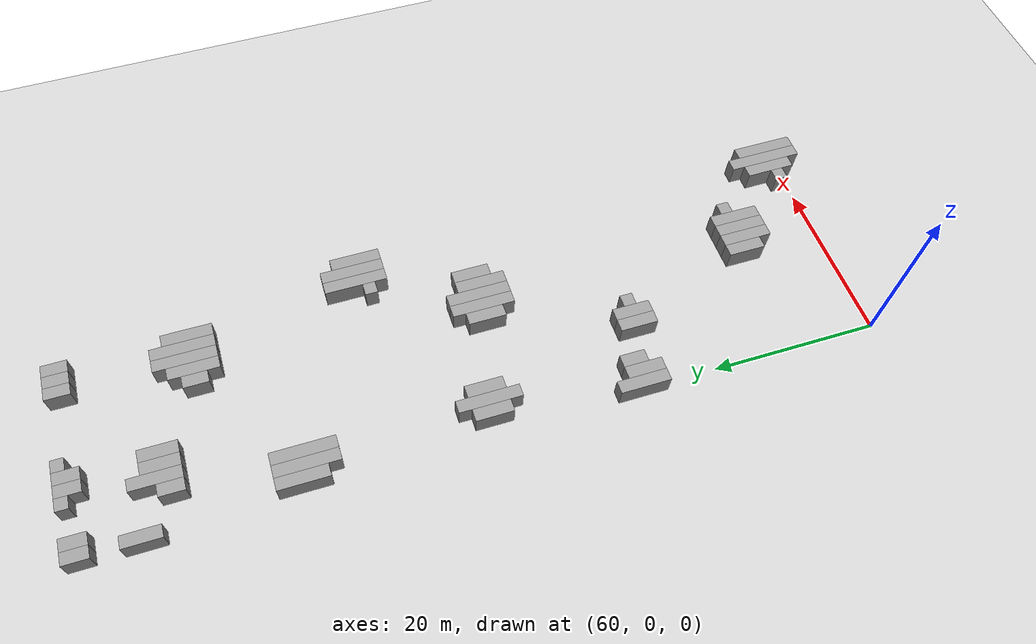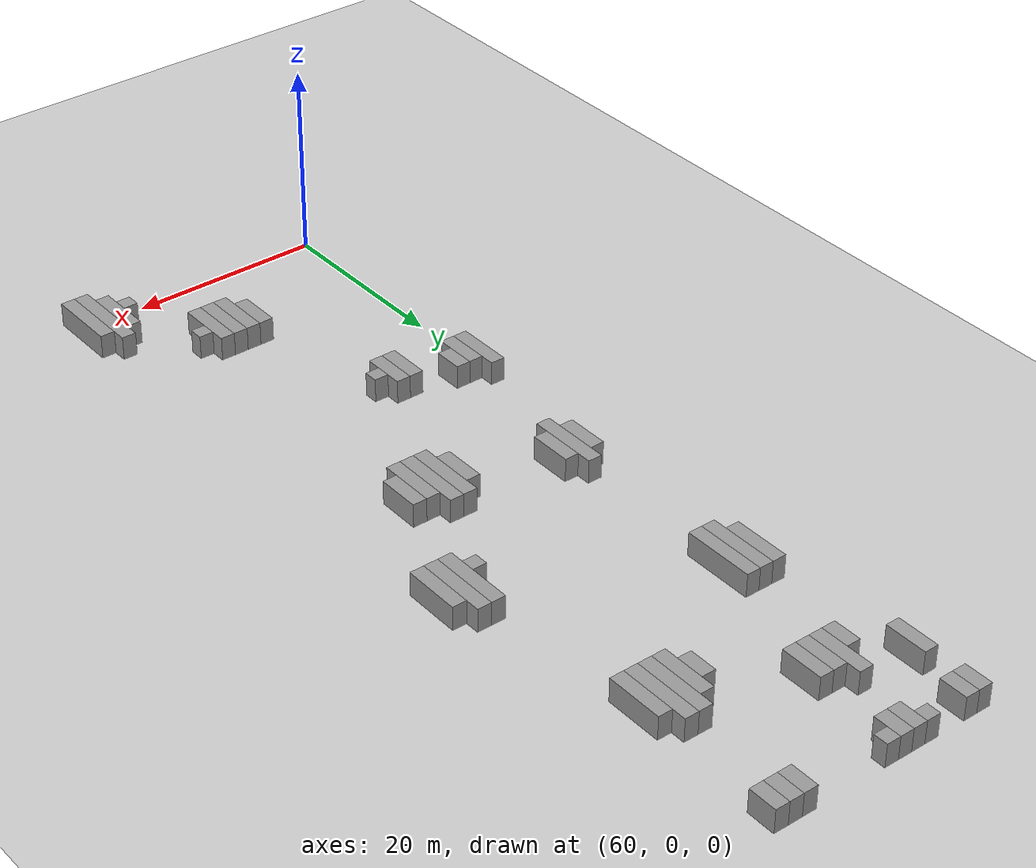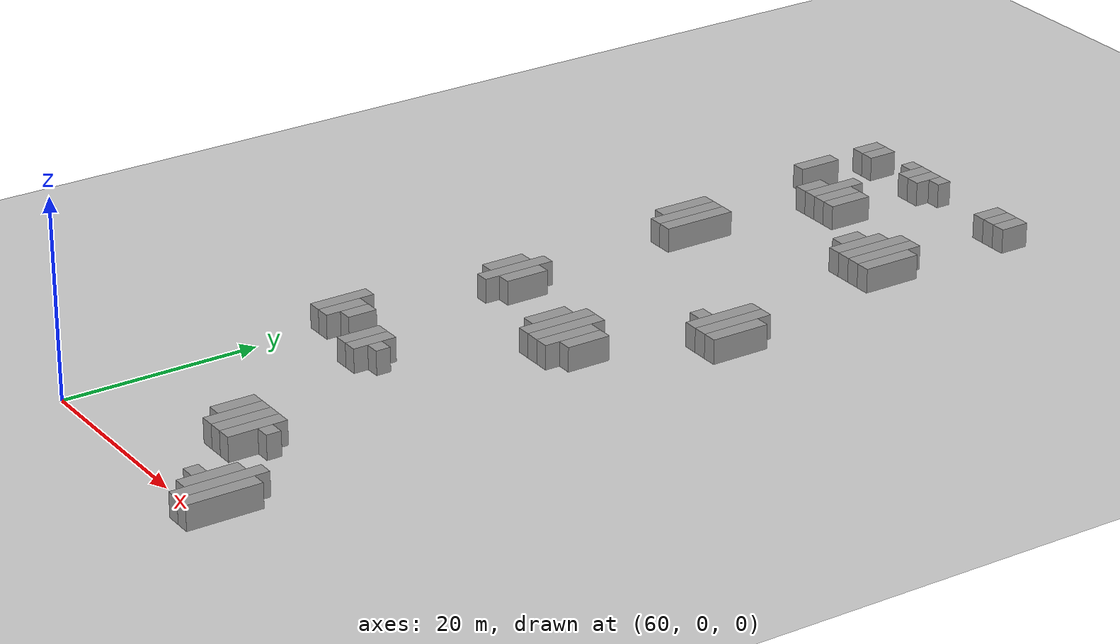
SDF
<sdf version="1.4">
 <world name="1_wall">
  <model name="ground_plane">
   <static>1</static>
   <link name="link">
    <collision name="collision">
     <geometry><plane><normal>0 0 1</normal><size>1000 1000</size></plane></geometry>
     <surface><friction><ode><mu>100</mu><mu2>50</mu2></ode></friction></surface>
    </collision>
    <visual name="visual">
     <cast_shadows>0</cast_shadows>
     <geometry><plane><normal>0 0 1</normal><size>10000 10000</size></plane></geometry>
     <material>
      <script><uri>file://media/materials/scripts/gazebo.material</uri><name>Gazebo/Grey</name></script>
     </material>
    </visual>
    <velocity_decay><linear>0</linear><angular>0</angular></velocity_decay>
   </link>
  </model>
  <model name="Wall_99">
   <static>1</static>
   <link name="Wall_99">
    <collision name="Wall_Collision_99">
     <geometry><box><size>4.5 1.5 2.5</size></box></geometry>
     <pose>0 0 1.25 0 -0 0</pose>
    </collision>
    <visual name="Wall_Visual_99">
     <pose>0 0 1.25 0 -0 0</pose>
     <geometry><box><size>4.5 1.5 2.5</size></box></geometry>
     <material>
      <script><uri>file://media/materials/scripts/gazebo.material</uri><name>Gazebo/Grey</name></script>
     </material>
    </visual>
    <velocity_decay><linear>0</linear><angular>0</angular></velocity_decay>
    <pose>58.5 85.5 0 0 0 1.5707963267948966</pose>
   </link>
  </model>
  <model name="Wall_100">
   <static>1</static>
   <link name="Wall_100">
    <collision name="Wall_Collision_100">
     <geometry><box><size>3.0 1.5 2.5</size></box></geometry>
     <pose>0 0 1.25 0 -0 0</pose>
    </collision>
    <visual name="Wall_Visual_100">
     <pose>0 0 1.25 0 -0 0</pose>
     <geometry><box><size>3.0 1.5 2.5</size></box></geometry>
     <material>
      <script><uri>file://media/materials/scripts/gazebo.material</uri><name>Gazebo/Grey</name></script>
     </material>
    </visual>
    <velocity_decay><linear>0</linear><angular>0</angular></velocity_decay>
    <pose>58.5 92.25 0 0 0 1.5707963267948966</pose>
   </link>
  </model>
  <model name="Wall_101">
   <static>1</static>
   <link name="Wall_101">
    <collision name="Wall_Collision_101">
     <geometry><box><size>6.0 1.5 2.5</size></box></geometry>
     <pose>0 0 1.25 0 -0 0</pose>
    </collision>
    <visual name="Wall_Visual_101">
     <pose>0 0 1.25 0 -0 0</pose>
     <geometry><box><size>6.0 1.5 2.5</size></box></geometry>
     <material>
      <script><uri>file://media/materials/scripts/gazebo.material</uri><name>Gazebo/Grey</name></script>
     </material>
    </visual>
    <velocity_decay><linear>0</linear><angular>0</angular></velocity_decay>
    <pose>60.0 29.25 0 0 0 1.5707963267948966</pose>
   </link>
  </model>
  <model name="Wall_102">
   <static>1</static>
   <link name="Wall_102">
    <collision name="Wall_Collision_102">
     <geometry><box><size>6.0 1.5 2.5</size></box></geometry>
     <pose>0 0 1.25 0 -0 0</pose>
    </collision>
    <visual name="Wall_Visual_102">
     <pose>0 0 1.25 0 -0 0</pose>
     <geometry><box><size>6.0 1.5 2.5</size></box></geometry>
     <material>
      <script><uri>file://media/materials/scripts/gazebo.material</uri><name>Gazebo/Grey</name></script>
     </material>
    </visual>
    <velocity_decay><linear>0</linear><angular>0</angular></velocity_decay>
    <pose>60.0 68.25 0 0 0 1.5707963267948966</pose>
   </link>
  </model>
  <model name="Wall_103">
   <static>1</static>
   <link name="Wall_103">
    <collision name="Wall_Collision_103">
     <geometry><box><size>3.0 1.5 2.5</size></box></geometry>
     <pose>0 0 1.25 0 -0 0</pose>
    </collision>
    <visual name="Wall_Visual_103">
     <pose>0 0 1.25 0 -0 0</pose>
     <geometry><box><size>3.0 1.5 2.5</size></box></geometry>
     <material>
      <script><uri>file://media/materials/scripts/gazebo.material</uri><name>Gazebo/Grey</name></script>
     </material>
    </visual>
    <velocity_decay><linear>0</linear><angular>0</angular></velocity_decay>
    <pose>60.0 92.25 0 0 0 1.5707963267948966</pose>
   </link>
  </model>
  <model name="Wall_104">
   <static>1</static>
   <link name="Wall_104">
    <collision name="Wall_Collision_104">
     <geometry><box><size>4.5 1.5 2.5</size></box></geometry>
     <pose>0 0 1.25 0 -0 0</pose>
    </collision>
    <visual name="Wall_Visual_104">
     <pose>0 0 1.25 0 -0 0</pose>
     <geometry><box><size>4.5 1.5 2.5</size></box></geometry>
     <material>
      <script><uri>file://media/materials/scripts/gazebo.material</uri><name>Gazebo/Grey</name></script>
     </material>
    </visual>
    <velocity_decay><linear>0</linear><angular>0</angular></velocity_decay>
    <pose>61.5 28.5 0 0 0 1.5707963267948966</pose>
   </link>
  </model>
  <model name="Wall_105">
   <static>1</static>
   <link name="Wall_105">
    <collision name="Wall_Collision_105">
     <geometry><box><size>4.5 1.5 2.5</size></box></geometry>
     <pose>0 0 1.25 0 -0 0</pose>
    </collision>
    <visual name="Wall_Visual_105">
     <pose>0 0 1.25 0 -0 0</pose>
     <geometry><box><size>4.5 1.5 2.5</size></box></geometry>
     <material>
      <script><uri>file://media/materials/scripts/gazebo.material</uri><name>Gazebo/Grey</name></script>
     </material>
    </visual>
    <velocity_decay><linear>0</linear><angular>0</angular></velocity_decay>
    <pose>61.5 46.5 0 0 0 1.5707963267948966</pose>
   </link>
  </model>
  <model name="Wall_106">
   <static>1</static>
   <link name="Wall_106">
    <collision name="Wall_Collision_106">
     <geometry><box><size>7.5 1.5 2.5</size></box></geometry>
     <pose>0 0 1.25 0 -0 0</pose>
    </collision>
    <visual name="Wall_Visual_106">
     <pose>0 0 1.25 0 -0 0</pose>
     <geometry><box><size>7.5 1.5 2.5</size></box></geometry>
     <material>
      <script><uri>file://media/materials/scripts/gazebo.material</uri><name>Gazebo/Grey</name></script>
     </material>
    </visual>
    <velocity_decay><linear>0</linear><angular>0</angular></velocity_decay>
    <pose>61.5 67.5 0 0 0 1.5707963267948966</pose>
   </link>
  </model>
  <model name="Wall_107">
   <static>1</static>
   <link name="Wall_107">
    <collision name="Wall_Collision_107">
     <geometry><box><size>3.0 1.5 2.5</size></box></geometry>
     <pose>0 0 1.25 0 -0 0</pose>
    </collision>
    <visual name="Wall_Visual_107">
     <pose>0 0 1.25 0 -0 0</pose>
     <geometry><box><size>3.0 1.5 2.5</size></box></geometry>
     <material>
      <script><uri>file://media/materials/scripts/gazebo.material</uri><name>Gazebo/Grey</name></script>
     </material>
    </visual>
    <velocity_decay><linear>0</linear><angular>0</angular></velocity_decay>
    <pose>63.0 29.25 0 0 0 1.5707963267948966</pose>
   </link>
  </model>
  <model name="Wall_108">
   <static>1</static>
   <link name="Wall_108">
    <collision name="Wall_Collision_108">
     <geometry><box><size>7.5 1.5 2.5</size></box></geometry>
     <pose>0 0 1.25 0 -0 0</pose>
    </collision>
    <visual name="Wall_Visual_108">
     <pose>0 0 1.25 0 -0 0</pose>
     <geometry><box><size>7.5 1.5 2.5</size></box></geometry>
     <material>
      <script><uri>file://media/materials/scripts/gazebo.material</uri><name>Gazebo/Grey</name></script>
     </material>
    </visual>
    <velocity_decay><linear>0</linear><angular>0</angular></velocity_decay>
    <pose>63.0 46.5 0 0 0 1.5707963267948966</pose>
   </link>
  </model>
  <model name="Wall_109">
   <static>1</static>
   <link name="Wall_109">
    <collision name="Wall_Collision_109">
     <geometry><box><size>7.5 1.5 2.5</size></box></geometry>
     <pose>0 0 1.25 0 -0 0</pose>
    </collision>
    <visual name="Wall_Visual_109">
     <pose>0 0 1.25 0 -0 0</pose>
     <geometry><box><size>7.5 1.5 2.5</size></box></geometry>
     <material>
      <script><uri>file://media/materials/scripts/gazebo.material</uri><name>Gazebo/Grey</name></script>
     </material>
    </visual>
    <velocity_decay><linear>0</linear><angular>0</angular></velocity_decay>
    <pose>63.0 67.5 0 0 0 1.5707963267948966</pose>
   </link>
  </model>
  <model name="Wall_110">
   <static>1</static>
   <link name="Wall_110">
    <collision name="Wall_Collision_110">
     <geometry><box><size>3.0 1.5 2.5</size></box></geometry>
     <pose>0 0 1.25 0 -0 0</pose>
    </collision>
    <visual name="Wall_Visual_110">
     <pose>0 0 1.25 0 -0 0</pose>
     <geometry><box><size>3.0 1.5 2.5</size></box></geometry>
     <material>
      <script><uri>file://media/materials/scripts/gazebo.material</uri><name>Gazebo/Grey</name></script>
     </material>
    </visual>
    <velocity_decay><linear>0</linear><angular>0</angular></velocity_decay>
    <pose>63.0 81.75 0 0 0 1.5707963267948966</pose>
   </link>
  </model>
  <model name="Wall_111">
   <static>1</static>
   <link name="Wall_111">
    <collision name="Wall_Collision_111">
     <geometry><box><size>4.5 1.5 2.5</size></box></geometry>
     <pose>0 0 1.25 0 -0 0</pose>
    </collision>
    <visual name="Wall_Visual_111">
     <pose>0 0 1.25 0 -0 0</pose>
     <geometry><box><size>4.5 1.5 2.5</size></box></geometry>
     <material>
      <script><uri>file://media/materials/scripts/gazebo.material</uri><name>Gazebo/Grey</name></script>
     </material>
    </visual>
    <velocity_decay><linear>0</linear><angular>0</angular></velocity_decay>
    <pose>64.5 46.5 0 0 0 1.5707963267948966</pose>
   </link>
  </model>
  <model name="Wall_112">
   <static>1</static>
   <link name="Wall_112">
    <collision name="Wall_Collision_112">
     <geometry><box><size>6.0 1.5 2.5</size></box></geometry>
     <pose>0 0 1.25 0 -0 0</pose>
    </collision>
    <visual name="Wall_Visual_112">
     <pose>0 0 1.25 0 -0 0</pose>
     <geometry><box><size>6.0 1.5 2.5</size></box></geometry>
     <material>
      <script><uri>file://media/materials/scripts/gazebo.material</uri><name>Gazebo/Grey</name></script>
     </material>
    </visual>
    <velocity_decay><linear>0</linear><angular>0</angular></velocity_decay>
    <pose>64.5 83.25 0 0 0 1.5707963267948966</pose>
   </link>
  </model>
  <model name="Wall_113">
   <static>1</static>
   <link name="Wall_113">
    <collision name="Wall_Collision_113">
     <geometry><box><size>1.5 1.5 2.5</size></box></geometry>
     <pose>0 0 1.25 0 -0 0</pose>
    </collision>
    <visual name="Wall_Visual_113">
     <pose>0 0 1.25 0 -0 0</pose>
     <geometry><box><size>1.5 1.5 2.5</size></box></geometry>
     <material>
      <script><uri>file://media/materials/scripts/gazebo.material</uri><name>Gazebo/Grey</name></script>
     </material>
    </visual>
    <velocity_decay><linear>0</linear><angular>0</angular></velocity_decay>
    <pose>64.5 93.0 0 0 0 1.5707963267948966</pose>
   </link>
  </model>
  <model name="Wall_114">
   <static>1</static>
   <link name="Wall_114">
    <collision name="Wall_Collision_114">
     <geometry><box><size>4.5 1.5 2.5</size></box></geometry>
     <pose>0 0 1.25 0 -0 0</pose>
    </collision>
    <visual name="Wall_Visual_114">
     <pose>0 0 1.25 0 -0 0</pose>
     <geometry><box><size>4.5 1.5 2.5</size></box></geometry>
     <material>
      <script><uri>file://media/materials/scripts/gazebo.material</uri><name>Gazebo/Grey</name></script>
     </material>
    </visual>
    <velocity_decay><linear>0</linear><angular>0</angular></velocity_decay>
    <pose>66.0 82.5 0 0 0 1.5707963267948966</pose>
   </link>
  </model>
  <model name="Wall_115">
   <static>1</static>
   <link name="Wall_115">
    <collision name="Wall_Collision_115">
     <geometry><box><size>3.0 1.5 2.5</size></box></geometry>
     <pose>0 0 1.25 0 -0 0</pose>
    </collision>
    <visual name="Wall_Visual_115">
     <pose>0 0 1.25 0 -0 0</pose>
     <geometry><box><size>3.0 1.5 2.5</size></box></geometry>
     <material>
      <script><uri>file://media/materials/scripts/gazebo.material</uri><name>Gazebo/Grey</name></script>
     </material>
    </visual>
    <velocity_decay><linear>0</linear><angular>0</angular></velocity_decay>
    <pose>66.0 92.25 0 0 0 1.5707963267948966</pose>
   </link>
  </model>
  <model name="Wall_116">
   <static>1</static>
   <link name="Wall_116">
    <collision name="Wall_Collision_116">
     <geometry><box><size>4.5 1.5 2.5</size></box></geometry>
     <pose>0 0 1.25 0 -0 0</pose>
    </collision>
    <visual name="Wall_Visual_116">
     <pose>0 0 1.25 0 -0 0</pose>
     <geometry><box><size>4.5 1.5 2.5</size></box></geometry>
     <material>
      <script><uri>file://media/materials/scripts/gazebo.material</uri><name>Gazebo/Grey</name></script>
     </material>
    </visual>
    <velocity_decay><linear>0</linear><angular>0</angular></velocity_decay>
    <pose>67.5 27.0 0 0 0 1.5707963267948966</pose>
   </link>
  </model>
  <model name="Wall_117">
   <static>1</static>
   <link name="Wall_117">
    <collision name="Wall_Collision_117">
     <geometry><box><size>4.5 1.5 2.5</size></box></geometry>
     <pose>0 0 1.25 0 -0 0</pose>
    </collision>
    <visual name="Wall_Visual_117">
     <pose>0 0 1.25 0 -0 0</pose>
     <geometry><box><size>4.5 1.5 2.5</size></box></geometry>
     <material>
      <script><uri>file://media/materials/scripts/gazebo.material</uri><name>Gazebo/Grey</name></script>
     </material>
    </visual>
    <velocity_decay><linear>0</linear><angular>0</angular></velocity_decay>
    <pose>67.5 82.5 0 0 0 1.5707963267948966</pose>
   </link>
  </model>
  <model name="Wall_118">
   <static>1</static>
   <link name="Wall_118">
    <collision name="Wall_Collision_118">
     <geometry><box><size>3.0 1.5 2.5</size></box></geometry>
     <pose>0 0 1.25 0 -0 0</pose>
    </collision>
    <visual name="Wall_Visual_118">
     <pose>0 0 1.25 0 -0 0</pose>
     <geometry><box><size>3.0 1.5 2.5</size></box></geometry>
     <material>
      <script><uri>file://media/materials/scripts/gazebo.material</uri><name>Gazebo/Grey</name></script>
     </material>
    </visual>
    <velocity_decay><linear>0</linear><angular>0</angular></velocity_decay>
    <pose>67.5 92.25 0 0 0 1.5707963267948966</pose>
   </link>
  </model>
  <model name="Wall_119">
   <static>1</static>
   <link name="Wall_119">
    <collision name="Wall_Collision_119">
     <geometry><box><size>4.5 1.5 2.5</size></box></geometry>
     <pose>0 0 1.25 0 -0 0</pose>
    </collision>
    <visual name="Wall_Visual_119">
     <pose>0 0 1.25 0 -0 0</pose>
     <geometry><box><size>4.5 1.5 2.5</size></box></geometry>
     <material>
      <script><uri>file://media/materials/scripts/gazebo.material</uri><name>Gazebo/Grey</name></script>
     </material>
    </visual>
    <velocity_decay><linear>0</linear><angular>0</angular></velocity_decay>
    <pose>69.0 27.0 0 0 0 1.5707963267948966</pose>
   </link>
  </model>
  <model name="Wall_120">
   <static>1</static>
   <link name="Wall_120">
    <collision name="Wall_Collision_120">
     <geometry><box><size>1.5 1.5 2.5</size></box></geometry>
     <pose>0 0 1.25 0 -0 0</pose>
    </collision>
    <visual name="Wall_Visual_120">
     <pose>0 0 1.25 0 -0 0</pose>
     <geometry><box><size>1.5 1.5 2.5</size></box></geometry>
     <material>
      <script><uri>file://media/materials/scripts/gazebo.material</uri><name>Gazebo/Grey</name></script>
     </material>
    </visual>
    <velocity_decay><linear>0</linear><angular>0</angular></velocity_decay>
    <pose>69.0 93.0 0 0 0 1.5707963267948966</pose>
   </link>
  </model>
  <model name="Wall_121">
   <static>1</static>
   <link name="Wall_121">
    <collision name="Wall_Collision_121">
     <geometry><box><size>1.5 1.5 2.5</size></box></geometry>
     <pose>0 0 1.25 0 -0 0</pose>
    </collision>
    <visual name="Wall_Visual_121">
     <pose>0 0 1.25 0 -0 0</pose>
     <geometry><box><size>1.5 1.5 2.5</size></box></geometry>
     <material>
      <script><uri>file://media/materials/scripts/gazebo.material</uri><name>Gazebo/Grey</name></script>
     </material>
    </visual>
    <velocity_decay><linear>0</linear><angular>0</angular></velocity_decay>
    <pose>70.5 27.0 0 0 0 1.5707963267948966</pose>
   </link>
  </model>
  <model name="Wall_122">
   <static>1</static>
   <link name="Wall_122">
    <collision name="Wall_Collision_122">
     <geometry><box><size>4.5 1.5 2.5</size></box></geometry>
     <pose>0 0 1.25 0 -0 0</pose>
    </collision>
    <visual name="Wall_Visual_122">
     <pose>0 0 1.25 0 -0 0</pose>
     <geometry><box><size>4.5 1.5 2.5</size></box></geometry>
     <material>
      <script><uri>file://media/materials/scripts/gazebo.material</uri><name>Gazebo/Grey</name></script>
     </material>
    </visual>
    <velocity_decay><linear>0</linear><angular>0</angular></velocity_decay>
    <pose>73.5 10.5 0 0 0 1.5707963267948966</pose>
   </link>
  </model>
  <model name="Wall_123">
   <static>1</static>
   <link name="Wall_123">
    <collision name="Wall_Collision_123">
     <geometry><box><size>4.5 1.5 2.5</size></box></geometry>
     <pose>0 0 1.25 0 -0 0</pose>
    </collision>
    <visual name="Wall_Visual_123">
     <pose>0 0 1.25 0 -0 0</pose>
     <geometry><box><size>4.5 1.5 2.5</size></box></geometry>
     <material>
      <script><uri>file://media/materials/scripts/gazebo.material</uri><name>Gazebo/Grey</name></script>
     </material>
    </visual>
    <velocity_decay><linear>0</linear><angular>0</angular></velocity_decay>
    <pose>73.5 43.5 0 0 0 1.5707963267948966</pose>
   </link>
  </model>
  <model name="Wall_124">
   <static>1</static>
   <link name="Wall_124">
    <collision name="Wall_Collision_124">
     <geometry><box><size>6.0 1.5 2.5</size></box></geometry>
     <pose>0 0 1.25 0 -0 0</pose>
    </collision>
    <visual name="Wall_Visual_124">
     <pose>0 0 1.25 0 -0 0</pose>
     <geometry><box><size>6.0 1.5 2.5</size></box></geometry>
     <material>
      <script><uri>file://media/materials/scripts/gazebo.material</uri><name>Gazebo/Grey</name></script>
     </material>
    </visual>
    <velocity_decay><linear>0</linear><angular>0</angular></velocity_decay>
    <pose>75.0 9.75 0 0 0 1.5707963267948966</pose>
   </link>
  </model>
  <model name="Wall_125">
   <static>1</static>
   <link name="Wall_125">
    <collision name="Wall_Collision_125">
     <geometry><box><size>7.5 1.5 2.5</size></box></geometry>
     <pose>0 0 1.25 0 -0 0</pose>
    </collision>
    <visual name="Wall_Visual_125">
     <pose>0 0 1.25 0 -0 0</pose>
     <geometry><box><size>7.5 1.5 2.5</size></box></geometry>
     <material>
      <script><uri>file://media/materials/scripts/gazebo.material</uri><name>Gazebo/Grey</name></script>
     </material>
    </visual>
    <velocity_decay><linear>0</linear><angular>0</angular></velocity_decay>
    <pose>75.0 43.5 0 0 0 1.5707963267948966</pose>
   </link>
  </model>
  <model name="Wall_126">
   <static>1</static>
   <link name="Wall_126">
    <collision name="Wall_Collision_126">
     <geometry><box><size>3.0 1.5 2.5</size></box></geometry>
     <pose>0 0 1.25 0 -0 0</pose>
    </collision>
    <visual name="Wall_Visual_126">
     <pose>0 0 1.25 0 -0 0</pose>
     <geometry><box><size>3.0 1.5 2.5</size></box></geometry>
     <material>
      <script><uri>file://media/materials/scripts/gazebo.material</uri><name>Gazebo/Grey</name></script>
     </material>
    </visual>
    <velocity_decay><linear>0</linear><angular>0</angular></velocity_decay>
    <pose>75.0 77.25 0 0 0 1.5707963267948966</pose>
   </link>
  </model>
  <model name="Wall_127">
   <static>1</static>
   <link name="Wall_127">
    <collision name="Wall_Collision_127">
     <geometry><box><size>6.0 1.5 2.5</size></box></geometry>
     <pose>0 0 1.25 0 -0 0</pose>
    </collision>
    <visual name="Wall_Visual_127">
     <pose>0 0 1.25 0 -0 0</pose>
     <geometry><box><size>6.0 1.5 2.5</size></box></geometry>
     <material>
      <script><uri>file://media/materials/scripts/gazebo.material</uri><name>Gazebo/Grey</name></script>
     </material>
    </visual>
    <velocity_decay><linear>0</linear><angular>0</angular></velocity_decay>
    <pose>76.5 9.75 0 0 0 1.5707963267948966</pose>
   </link>
  </model>
  <model name="Wall_128">
   <static>1</static>
   <link name="Wall_128">
    <collision name="Wall_Collision_128">
     <geometry><box><size>7.5 1.5 2.5</size></box></geometry>
     <pose>0 0 1.25 0 -0 0</pose>
    </collision>
    <visual name="Wall_Visual_128">
     <pose>0 0 1.25 0 -0 0</pose>
     <geometry><box><size>7.5 1.5 2.5</size></box></geometry>
     <material>
      <script><uri>file://media/materials/scripts/gazebo.material</uri><name>Gazebo/Grey</name></script>
     </material>
    </visual>
    <velocity_decay><linear>0</linear><angular>0</angular></velocity_decay>
    <pose>76.5 43.5 0 0 0 1.5707963267948966</pose>
   </link>
  </model>
  <model name="Wall_129">
   <static>1</static>
   <link name="Wall_129">
    <collision name="Wall_Collision_129">
     <geometry><box><size>6.0 1.5 2.5</size></box></geometry>
     <pose>0 0 1.25 0 -0 0</pose>
    </collision>
    <visual name="Wall_Visual_129">
     <pose>0 0 1.25 0 -0 0</pose>
     <geometry><box><size>6.0 1.5 2.5</size></box></geometry>
     <material>
      <script><uri>file://media/materials/scripts/gazebo.material</uri><name>Gazebo/Grey</name></script>
     </material>
    </visual>
    <velocity_decay><linear>0</linear><angular>0</angular></velocity_decay>
    <pose>76.5 77.25 0 0 0 1.5707963267948966</pose>
   </link>
  </model>
  <model name="Wall_130">
   <static>1</static>
   <link name="Wall_130">
    <collision name="Wall_Collision_130">
     <geometry><box><size>6.0 1.5 2.5</size></box></geometry>
     <pose>0 0 1.25 0 -0 0</pose>
    </collision>
    <visual name="Wall_Visual_130">
     <pose>0 0 1.25 0 -0 0</pose>
     <geometry><box><size>6.0 1.5 2.5</size></box></geometry>
     <material>
      <script><uri>file://media/materials/scripts/gazebo.material</uri><name>Gazebo/Grey</name></script>
     </material>
    </visual>
    <velocity_decay><linear>0</linear><angular>0</angular></velocity_decay>
    <pose>78.0 9.75 0 0 0 1.5707963267948966</pose>
   </link>
  </model>
  <model name="Wall_131">
   <static>1</static>
   <link name="Wall_131">
    <collision name="Wall_Collision_131">
     <geometry><box><size>6.0 1.5 2.5</size></box></geometry>
     <pose>0 0 1.25 0 -0 0</pose>
    </collision>
    <visual name="Wall_Visual_131">
     <pose>0 0 1.25 0 -0 0</pose>
     <geometry><box><size>6.0 1.5 2.5</size></box></geometry>
     <material>
      <script><uri>file://media/materials/scripts/gazebo.material</uri><name>Gazebo/Grey</name></script>
     </material>
    </visual>
    <velocity_decay><linear>0</linear><angular>0</angular></velocity_decay>
    <pose>78.0 42.75 0 0 0 1.5707963267948966</pose>
   </link>
  </model>
  <model name="Wall_132">
   <static>1</static>
   <link name="Wall_132">
    <collision name="Wall_Collision_132">
     <geometry><box><size>7.5 1.5 2.5</size></box></geometry>
     <pose>0 0 1.25 0 -0 0</pose>
    </collision>
    <visual name="Wall_Visual_132">
     <pose>0 0 1.25 0 -0 0</pose>
     <geometry><box><size>7.5 1.5 2.5</size></box></geometry>
     <material>
      <script><uri>file://media/materials/scripts/gazebo.material</uri><name>Gazebo/Grey</name></script>
     </material>
    </visual>
    <velocity_decay><linear>0</linear><angular>0</angular></velocity_decay>
    <pose>78.0 78.0 0 0 0 1.5707963267948966</pose>
   </link>
  </model>
  <model name="Wall_133">
   <static>1</static>
   <link name="Wall_133">
    <collision name="Wall_Collision_133">
     <geometry><box><size>3.0 1.5 2.5</size></box></geometry>
     <pose>0 0 1.25 0 -0 0</pose>
    </collision>
    <visual name="Wall_Visual_133">
     <pose>0 0 1.25 0 -0 0</pose>
     <geometry><box><size>3.0 1.5 2.5</size></box></geometry>
     <material>
      <script><uri>file://media/materials/scripts/gazebo.material</uri><name>Gazebo/Grey</name></script>
     </material>
    </visual>
    <velocity_decay><linear>0</linear><angular>0</angular></velocity_decay>
    <pose>78.0 92.25 0 0 0 1.5707963267948966</pose>
   </link>
  </model>
  <model name="Wall_134">
   <static>1</static>
   <link name="Wall_134">
    <collision name="Wall_Collision_134">
     <geometry><box><size>1.5 1.5 2.5</size></box></geometry>
     <pose>0 0 1.25 0 -0 0</pose>
    </collision>
    <visual name="Wall_Visual_134">
     <pose>0 0 1.25 0 -0 0</pose>
     <geometry><box><size>1.5 1.5 2.5</size></box></geometry>
     <material>
      <script><uri>file://media/materials/scripts/gazebo.material</uri><name>Gazebo/Grey</name></script>
     </material>
    </visual>
    <velocity_decay><linear>0</linear><angular>0</angular></velocity_decay>
    <pose>79.5 10.5 0 0 0 1.5707963267948966</pose>
   </link>
  </model>
  <model name="Wall_135">
   <static>1</static>
   <link name="Wall_135">
    <collision name="Wall_Collision_135">
     <geometry><box><size>4.5 1.5 2.5</size></box></geometry>
     <pose>0 0 1.25 0 -0 0</pose>
    </collision>
    <visual name="Wall_Visual_135">
     <pose>0 0 1.25 0 -0 0</pose>
     <geometry><box><size>4.5 1.5 2.5</size></box></geometry>
     <material>
      <script><uri>file://media/materials/scripts/gazebo.material</uri><name>Gazebo/Grey</name></script>
     </material>
    </visual>
    <velocity_decay><linear>0</linear><angular>0</angular></velocity_decay>
    <pose>79.5 43.5 0 0 0 1.5707963267948966</pose>
   </link>
  </model>
  <model name="Wall_136">
   <static>1</static>
   <link name="Wall_136">
    <collision name="Wall_Collision_136">
     <geometry><box><size>7.5 1.5 2.5</size></box></geometry>
     <pose>0 0 1.25 0 -0 0</pose>
    </collision>
    <visual name="Wall_Visual_136">
     <pose>0 0 1.25 0 -0 0</pose>
     <geometry><box><size>7.5 1.5 2.5</size></box></geometry>
     <material>
      <script><uri>file://media/materials/scripts/gazebo.material</uri><name>Gazebo/Grey</name></script>
     </material>
    </visual>
    <velocity_decay><linear>0</linear><angular>0</angular></velocity_decay>
    <pose>79.5 78.0 0 0 0 1.5707963267948966</pose>
   </link>
  </model>
  <model name="Wall_137">
   <static>1</static>
   <link name="Wall_137">
    <collision name="Wall_Collision_137">
     <geometry><box><size>3.0 1.5 2.5</size></box></geometry>
     <pose>0 0 1.25 0 -0 0</pose>
    </collision>
    <visual name="Wall_Visual_137">
     <pose>0 0 1.25 0 -0 0</pose>
     <geometry><box><size>3.0 1.5 2.5</size></box></geometry>
     <material>
      <script><uri>file://media/materials/scripts/gazebo.material</uri><name>Gazebo/Grey</name></script>
     </material>
    </visual>
    <velocity_decay><linear>0</linear><angular>0</angular></velocity_decay>
    <pose>79.5 92.25 0 0 0 1.5707963267948966</pose>
   </link>
  </model>
  <model name="Wall_138">
   <static>1</static>
   <link name="Wall_138">
    <collision name="Wall_Collision_138">
     <geometry><box><size>1.5 1.5 2.5</size></box></geometry>
     <pose>0 0 1.25 0 -0 0</pose>
    </collision>
    <visual name="Wall_Visual_138">
     <pose>0 0 1.25 0 -0 0</pose>
     <geometry><box><size>1.5 1.5 2.5</size></box></geometry>
     <material>
      <script><uri>file://media/materials/scripts/gazebo.material</uri><name>Gazebo/Grey</name></script>
     </material>
    </visual>
    <velocity_decay><linear>0</linear><angular>0</angular></velocity_decay>
    <pose>81.0 55.5 0 0 0 1.5707963267948966</pose>
   </link>
  </model>
  <model name="Wall_139">
   <static>1</static>
   <link name="Wall_139">
    <collision name="Wall_Collision_139">
     <geometry><box><size>6.0 1.5 2.5</size></box></geometry>
     <pose>0 0 1.25 0 -0 0</pose>
    </collision>
    <visual name="Wall_Visual_139">
     <pose>0 0 1.25 0 -0 0</pose>
     <geometry><box><size>6.0 1.5 2.5</size></box></geometry>
     <material>
      <script><uri>file://media/materials/scripts/gazebo.material</uri><name>Gazebo/Grey</name></script>
     </material>
    </visual>
    <velocity_decay><linear>0</linear><angular>0</angular></velocity_decay>
    <pose>81.0 77.25 0 0 0 1.5707963267948966</pose>
   </link>
  </model>
  <model name="Wall_140">
   <static>1</static>
   <link name="Wall_140">
    <collision name="Wall_Collision_140">
     <geometry><box><size>3.0 1.5 2.5</size></box></geometry>
     <pose>0 0 1.25 0 -0 0</pose>
    </collision>
    <visual name="Wall_Visual_140">
     <pose>0 0 1.25 0 -0 0</pose>
     <geometry><box><size>3.0 1.5 2.5</size></box></geometry>
     <material>
      <script><uri>file://media/materials/scripts/gazebo.material</uri><name>Gazebo/Grey</name></script>
     </material>
    </visual>
    <velocity_decay><linear>0</linear><angular>0</angular></velocity_decay>
    <pose>81.0 92.25 0 0 0 1.5707963267948966</pose>
   </link>
  </model>
  <model name="Wall_141">
   <static>1</static>
   <link name="Wall_141">
    <collision name="Wall_Collision_141">
     <geometry><box><size>1.5 1.5 2.5</size></box></geometry>
     <pose>0 0 1.25 0 -0 0</pose>
    </collision>
    <visual name="Wall_Visual_141">
     <pose>0 0 1.25 0 -0 0</pose>
     <geometry><box><size>1.5 1.5 2.5</size></box></geometry>
     <material>
      <script><uri>file://media/materials/scripts/gazebo.material</uri><name>Gazebo/Grey</name></script>
     </material>
    </visual>
    <velocity_decay><linear>0</linear><angular>0</angular></velocity_decay>
    <pose>82.5 1.5 0 0 0 1.5707963267948966</pose>
   </link>
  </model>
  <model name="Wall_142">
   <static>1</static>
   <link name="Wall_142">
    <collision name="Wall_Collision_142">
     <geometry><box><size>7.5 1.5 2.5</size></box></geometry>
     <pose>0 0 1.25 0 -0 0</pose>
    </collision>
    <visual name="Wall_Visual_142">
     <pose>0 0 1.25 0 -0 0</pose>
     <geometry><box><size>7.5 1.5 2.5</size></box></geometry>
     <material>
      <script><uri>file://media/materials/scripts/gazebo.material</uri><name>Gazebo/Grey</name></script>
     </material>
    </visual>
    <velocity_decay><linear>0</linear><angular>0</angular></velocity_decay>
    <pose>82.5 57.0 0 0 0 1.5707963267948966</pose>
   </link>
  </model>
  <model name="Wall_143">
   <static>1</static>
   <link name="Wall_143">
    <collision name="Wall_Collision_143">
     <geometry><box><size>6.0 1.5 2.5</size></box></geometry>
     <pose>0 0 1.25 0 -0 0</pose>
    </collision>
    <visual name="Wall_Visual_143">
     <pose>0 0 1.25 0 -0 0</pose>
     <geometry><box><size>6.0 1.5 2.5</size></box></geometry>
     <material>
      <script><uri>file://media/materials/scripts/gazebo.material</uri><name>Gazebo/Grey</name></script>
     </material>
    </visual>
    <velocity_decay><linear>0</linear><angular>0</angular></velocity_decay>
    <pose>84.0 2.25 0 0 0 1.5707963267948966</pose>
   </link>
  </model>
  <model name="Wall_144">
   <static>1</static>
   <link name="Wall_144">
    <collision name="Wall_Collision_144">
     <geometry><box><size>7.5 1.5 2.5</size></box></geometry>
     <pose>0 0 1.25 0 -0 0</pose>
    </collision>
    <visual name="Wall_Visual_144">
     <pose>0 0 1.25 0 -0 0</pose>
     <geometry><box><size>7.5 1.5 2.5</size></box></geometry>
     <material>
      <script><uri>file://media/materials/scripts/gazebo.material</uri><name>Gazebo/Grey</name></script>
     </material>
    </visual>
    <velocity_decay><linear>0</linear><angular>0</angular></velocity_decay>
    <pose>84.0 57.0 0 0 0 1.5707963267948966</pose>
   </link>
  </model>
  <model name="Wall_145">
   <static>1</static>
   <link name="Wall_145">
    <collision name="Wall_Collision_145">
     <geometry><box><size>9.0 1.5 2.5</size></box></geometry>
     <pose>0 0 1.25 0 -0 0</pose>
    </collision>
    <visual name="Wall_Visual_145">
     <pose>0 0 1.25 0 -0 0</pose>
     <geometry><box><size>9.0 1.5 2.5</size></box></geometry>
     <material>
      <script><uri>file://media/materials/scripts/gazebo.material</uri><name>Gazebo/Grey</name></script>
     </material>
    </visual>
    <velocity_decay><linear>0</linear><angular>0</angular></velocity_decay>
    <pose>85.5 2.25 0 0 0 1.5707963267948966</pose>
   </link>
  </model>
  <model name="Wall_146">
   <static>1</static>
   <link name="Wall_146">
    <collision name="Wall_Collision_146">
     <geometry><box><size>6.0 1.5 2.5</size></box></geometry>
     <pose>0 0 1.25 0 -0 0</pose>
    </collision>
    <visual name="Wall_Visual_146">
     <pose>0 0 1.25 0 -0 0</pose>
     <geometry><box><size>6.0 1.5 2.5</size></box></geometry>
     <material>
      <script><uri>file://media/materials/scripts/gazebo.material</uri><name>Gazebo/Grey</name></script>
     </material>
    </visual>
    <velocity_decay><linear>0</linear><angular>0</angular></velocity_decay>
    <pose>85.5 56.25 0 0 0 1.5707963267948966</pose>
   </link>
  </model>
  <model name="Wall_147">
   <static>1</static>
   <link name="Wall_147">
    <collision name="Wall_Collision_147">
     <geometry><box><size>7.5 1.5 2.5</size></box></geometry>
     <pose>0 0 1.25 0 -0 0</pose>
    </collision>
    <visual name="Wall_Visual_147">
     <pose>0 0 1.25 0 -0 0</pose>
     <geometry><box><size>7.5 1.5 2.5</size></box></geometry>
     <material>
      <script><uri>file://media/materials/scripts/gazebo.material</uri><name>Gazebo/Grey</name></script>
     </material>
    </visual>
    <velocity_decay><linear>0</linear><angular>0</angular></velocity_decay>
    <pose>87.0 1.5 0 0 0 1.5707963267948966</pose>
   </link>
  </model>
 </world>
</sdf>
